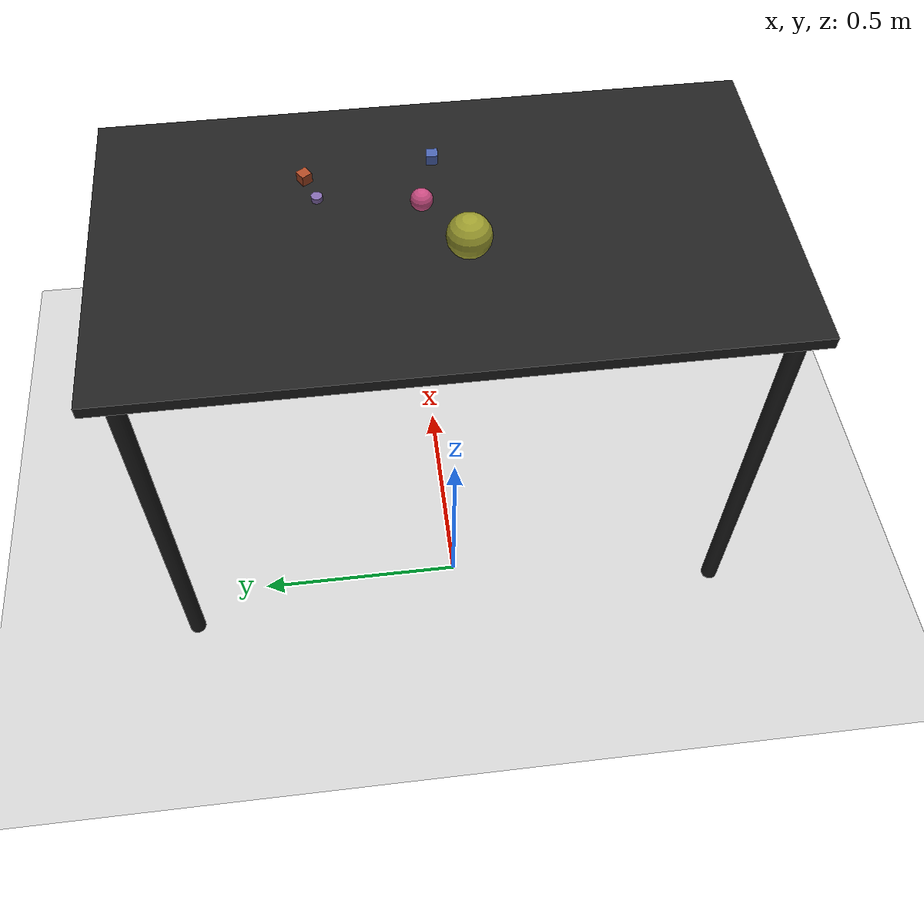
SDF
<?xml version="1.0" ?>
<sdf version="1.6">
  <world name="arm_world">
    <plugin filename="gz-sim-physics-system" name="gz::sim::systems::Physics">
      <engine>
        <filename>libgz-physics-bullet-featherstone-plugin.so</filename>
      </engine>
    </plugin>
    <plugin filename="gz-sim-user-commands-system" name="gz::sim::systems::UserCommands"/>
    <plugin filename="gz-sim-scene-broadcaster-system" name="gz::sim::systems::SceneBroadcaster"/>
    <plugin filename="gz-sim-sensors-system" name="gz::sim::systems::Sensors">
      <render_engine>ogre2</render_engine>
    </plugin>
    <gravity>0.0 0.0 -9.8</gravity>
    <scene>
      <shadows>false</shadows>
    </scene>
    <gui>
      <camera name="user_camera">
        <pose>0.75 -0.75 1.4 0 0.29 2.21</pose>
      </camera>
    </gui>
    <include>
      <uri>https://fuel.gazebosim.org/1.0/OpenRobotics/models/Sun</uri>
    </include>
    <model name="table">
      <static>true</static>
      <include>
        <uri>model://table</uri>
      </include>
      <pose>0.29 0 0 0 0 1.5708</pose>
    </model>
    <model name="ground_plane">
      <static>true</static>
      <link name="link">
        <collision name="collision">
          <geometry>
            <plane>
              <normal>0 0 1</normal>
            </plane>
          </geometry>
          <surface>
            <friction>
              <ode>
                <mu>1.0</mu>
                <mu2>1.0</mu2>
              </ode>
            </friction>
          </surface>
        </collision>
        <visual name="visual">
          <geometry>
            <plane>
              <normal>0 0 1</normal>
              <size>100 100</size>
            </plane>
          </geometry>
          <material>
            <ambient>0.8 0.8 0.8 1</ambient>
            <diffuse>0.8 0.8 0.8 1</diffuse>
            <specular>0.8 0.8 0.8 1</specular>
          </material>
        </visual>
      </link>
    </model>
    <model name="cylinder_s_0">
      <pose>0.368 0.259 1.05 0 0 1.74</pose>
      <link name="cylinder_s_0_link">
        <inertial>
          <mass>0.05</mass>
          <inertia>
            <ixx>2.04e-7</ixx>
            <iyy>2.04e-7</iyy>
            <izz>3.9e-8</izz>
            <ixy>0</ixy>
            <ixz>0</ixz>
            <iyz>0</iyz>
          </inertia>
        </inertial>
        <collision name="cylinder_s_0_collision">
          <geometry>
            <cylinder>
              <radius>0.0125</radius>
              <length>0.0125</length>
            </cylinder>
          </geometry>
          <surface>
            <friction>
              <ode>
                <mu>0.8</mu>
                <mu2>0.8</mu2>
                <fdir1>0 0 1</fdir1>
                <slip1>0.001</slip1>
                <slip2>0.001</slip2>
              </ode>
              <torsional>
                <coefficient>0.1</coefficient>
                <surface_radius>0.015</surface_radius>
                <use_patch_radius>true</use_patch_radius>
              </torsional>
            </friction>
            <contact>
              <ode>
                <kp>1e5</kp>
                <kd>10</kd>
                <max_vel>0.1</max_vel>
                <min_depth>0.001</min_depth>
                <soft_cfm>0.01</soft_cfm>
                <soft_erp>0.2</soft_erp>
              </ode>
            </contact>
            <bounce>
              <restitution_coefficient>0.2</restitution_coefficient>
              <threshold>0.01</threshold>
            </bounce>
          </surface>
        </collision>
        <visual name="cylinder_s_0_visual">
          <geometry>
            <cylinder>
              <radius>0.0125</radius>
              <length>0.0125</length>
            </cylinder>
          </geometry>
          <material>
            <ambient>0.5 0.4 0.66 1</ambient>
            <diffuse>0.5 0.4 0.66 1</diffuse>
          </material>
        </visual>
        <velocity_decay>
          <linear>1</linear>
          <angular>1</angular>
        </velocity_decay>
      </link>
    </model>
    <model name="cube_s_1">
      <pose>0.436 0.283 1.05 0 0 0.56</pose>
      <link name="cube_s_1_link">
        <inertial>
          <mass>0.05</mass>
          <inertia>
            <ixx>2.04e-7</ixx>
            <iyy>2.04e-7</iyy>
            <izz>3.9e-8</izz>
            <ixy>0</ixy>
            <ixz>0</ixz>
            <iyz>0</iyz>
          </inertia>
        </inertial>
        <collision name="cube_s_1_collision">
          <geometry>
            <box>
              <size>0.025 0.025 0.025</size>
            </box>
          </geometry>
          <surface>
            <friction>
              <ode>
                <mu>0.8</mu>
                <mu2>0.8</mu2>
                <fdir1>0 0 1</fdir1>
                <slip1>0.001</slip1>
                <slip2>0.001</slip2>
              </ode>
              <torsional>
                <coefficient>0.1</coefficient>
                <surface_radius>0.015</surface_radius>
                <use_patch_radius>true</use_patch_radius>
              </torsional>
            </friction>
            <contact>
              <ode>
                <kp>1e5</kp>
                <kd>10</kd>
                <max_vel>0.1</max_vel>
                <min_depth>0.001</min_depth>
                <soft_cfm>0.01</soft_cfm>
                <soft_erp>0.2</soft_erp>
              </ode>
            </contact>
            <bounce>
              <restitution_coefficient>0.2</restitution_coefficient>
              <threshold>0.01</threshold>
            </bounce>
          </surface>
        </collision>
        <visual name="cube_s_1_visual">
          <geometry>
            <box>
              <size>0.025 0.025 0.025</size>
            </box>
          </geometry>
          <material>
            <ambient>0.67 0.28 0.14 1</ambient>
            <diffuse>0.67 0.28 0.14 1</diffuse>
          </material>
        </visual>
        <velocity_decay>
          <linear>1</linear>
          <angular>1</angular>
        </velocity_decay>
      </link>
    </model>
    <model name="sphere_m_2">
      <pose>0.337 0.036 1.05 0 0 2.52</pose>
      <link name="sphere_m_2_link">
        <inertial>
          <mass>0.05</mass>
          <inertia>
            <ixx>2.04e-7</ixx>
            <iyy>2.04e-7</iyy>
            <izz>3.9e-8</izz>
            <ixy>0</ixy>
            <ixz>0</ixz>
            <iyz>0</iyz>
          </inertia>
        </inertial>
        <collision name="sphere_m_2_collision">
          <geometry>
            <sphere>
              <radius>0.025</radius>
            </sphere>
          </geometry>
          <surface>
            <friction>
              <ode>
                <mu>0.8</mu>
                <mu2>0.8</mu2>
                <fdir1>0 0 1</fdir1>
                <slip1>0.001</slip1>
                <slip2>0.001</slip2>
              </ode>
              <torsional>
                <coefficient>0.1</coefficient>
                <surface_radius>0.015</surface_radius>
                <use_patch_radius>true</use_patch_radius>
              </torsional>
            </friction>
            <contact>
              <ode>
                <kp>1e5</kp>
                <kd>10</kd>
                <max_vel>0.1</max_vel>
                <min_depth>0.001</min_depth>
                <soft_cfm>0.01</soft_cfm>
                <soft_erp>0.2</soft_erp>
              </ode>
            </contact>
            <bounce>
              <restitution_coefficient>0.2</restitution_coefficient>
              <threshold>0.01</threshold>
            </bounce>
          </surface>
        </collision>
        <visual name="sphere_m_2_visual">
          <geometry>
            <sphere>
              <radius>0.025</radius>
            </sphere>
          </geometry>
          <material>
            <ambient>0.78 0.29 0.5 1</ambient>
            <diffuse>0.78 0.29 0.5 1</diffuse>
          </material>
        </visual>
        <velocity_decay>
          <linear>1</linear>
          <angular>1</angular>
        </velocity_decay>
      </link>
    </model>
    <model name="sphere_l_3">
      <pose>0.22 -0.052 1.05 0 0 3.02</pose>
      <link name="sphere_l_3_link">
        <inertial>
          <mass>0.05</mass>
          <inertia>
            <ixx>2.04e-7</ixx>
            <iyy>2.04e-7</iyy>
            <izz>3.9e-8</izz>
            <ixy>0</ixy>
            <ixz>0</ixz>
            <iyz>0</iyz>
          </inertia>
        </inertial>
        <collision name="sphere_l_3_collision">
          <geometry>
            <sphere>
              <radius>0.05</radius>
            </sphere>
          </geometry>
          <surface>
            <friction>
              <ode>
                <mu>0.8</mu>
                <mu2>0.8</mu2>
                <fdir1>0 0 1</fdir1>
                <slip1>0.001</slip1>
                <slip2>0.001</slip2>
              </ode>
              <torsional>
                <coefficient>0.1</coefficient>
                <surface_radius>0.015</surface_radius>
                <use_patch_radius>true</use_patch_radius>
              </torsional>
            </friction>
            <contact>
              <ode>
                <kp>1e5</kp>
                <kd>10</kd>
                <max_vel>0.1</max_vel>
                <min_depth>0.001</min_depth>
                <soft_cfm>0.01</soft_cfm>
                <soft_erp>0.2</soft_erp>
              </ode>
            </contact>
            <bounce>
              <restitution_coefficient>0.2</restitution_coefficient>
              <threshold>0.01</threshold>
            </bounce>
          </surface>
        </collision>
        <visual name="sphere_l_3_visual">
          <geometry>
            <sphere>
              <radius>0.05</radius>
            </sphere>
          </geometry>
          <material>
            <ambient>0.61 0.61 0.18 1</ambient>
            <diffuse>0.61 0.61 0.18 1</diffuse>
          </material>
        </visual>
        <velocity_decay>
          <linear>1</linear>
          <angular>1</angular>
        </velocity_decay>
      </link>
    </model>
    <model name="cube_s_4">
      <pose>0.468 -0.0 1.05 0 0 6.22</pose>
      <link name="cube_s_4_link">
        <inertial>
          <mass>0.05</mass>
          <inertia>
            <ixx>2.04e-7</ixx>
            <iyy>2.04e-7</iyy>
            <izz>3.9e-8</izz>
            <ixy>0</ixy>
            <ixz>0</ixz>
            <iyz>0</iyz>
          </inertia>
        </inertial>
        <collision name="cube_s_4_collision">
          <geometry>
            <box>
              <size>0.025 0.025 0.025</size>
            </box>
          </geometry>
          <surface>
            <friction>
              <ode>
                <mu>0.8</mu>
                <mu2>0.8</mu2>
                <fdir1>0 0 1</fdir1>
                <slip1>0.001</slip1>
                <slip2>0.001</slip2>
              </ode>
              <torsional>
                <coefficient>0.1</coefficient>
                <surface_radius>0.015</surface_radius>
                <use_patch_radius>true</use_patch_radius>
              </torsional>
            </friction>
            <contact>
              <ode>
                <kp>1e5</kp>
                <kd>10</kd>
                <max_vel>0.1</max_vel>
                <min_depth>0.001</min_depth>
                <soft_cfm>0.01</soft_cfm>
                <soft_erp>0.2</soft_erp>
              </ode>
            </contact>
            <bounce>
              <restitution_coefficient>0.2</restitution_coefficient>
              <threshold>0.01</threshold>
            </bounce>
          </surface>
        </collision>
        <visual name="cube_s_4_visual">
          <geometry>
            <box>
              <size>0.025 0.025 0.025</size>
            </box>
          </geometry>
          <material>
            <ambient>0.28 0.38 0.67 1</ambient>
            <diffuse>0.28 0.38 0.67 1</diffuse>
          </material>
        </visual>
        <velocity_decay>
          <linear>1</linear>
          <angular>1</angular>
        </velocity_decay>
      </link>
    </model>
  </world>
</sdf>

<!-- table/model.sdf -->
<sdf version="1.5">
  <model name="table">
    <static>true</static>
    <link name="link">
      <collision name="surface">
        <pose>0 0 1.0 0 0 0</pose>
        <geometry>
          <box>
            <size>1.5 0.8 0.03</size>
          </box>
        </geometry>
        <surface>
          <friction>
            <ode>
              <mu>0.6</mu>
              <mu2>0.6</mu2>
            </ode>
          </friction>
        </surface>
      </collision>
      <visual name="surface">
        <pose>0 0 1.0 0 0 0</pose>
        <geometry>
          <box>
            <size>1.5 0.8 0.03</size>
          </box>
        </geometry>
        <material>
          <script>
            <uri>file://media/materials/scripts/gazebo.material</uri>
            <name>Gazebo/Black</name>
          </script>
        </material>
      </visual>
      <collision name="front_left_leg">
        <pose>0.68 0.38 0.5 0 0 0</pose>
        <geometry>
          <cylinder>
            <radius>0.02</radius>
            <length>1.0</length>
          </cylinder>
        </geometry>
      </collision>
      <visual name="front_left_leg">
        <pose>0.68 0.38 0.5 0 0 0</pose>
        <geometry>
          <cylinder>
            <radius>0.02</radius>
            <length>1.0</length>
          </cylinder>
        </geometry>
        <material>
          <script>
            <uri>file://media/materials/scripts/gazebo.material</uri>
            <name>Gazebo/Black</name>
          </script>
        </material>
      </visual>
      <collision name="front_right_leg">
        <pose>0.68 -0.38 0.5 0 0 0</pose>
        <geometry>
          <cylinder>
            <radius>0.02</radius>
            <length>1.0</length>
          </cylinder>
        </geometry>
      </collision>
      <visual name="front_right_leg">
        <pose>0.68 -0.38 0.5 0 0 0</pose>
        <geometry>
          <cylinder>
            <radius>0.02</radius>
            <length>1.0</length>
          </cylinder>
        </geometry>
        <material>
          <script>
            <uri>file://media/materials/scripts/gazebo.material</uri>
            <name>Gazebo/Black</name>
          </script>
        </material>
      </visual>
      <collision name="back_right_leg">
        <pose>-0.68 -0.38 0.5 0 0 0</pose>
        <geometry>
          <cylinder>
            <radius>0.02</radius>
            <length>1.0</length>
          </cylinder>
        </geometry>
      </collision>
      <visual name="back_right_leg">
        <pose>-0.68 -0.38 0.5 0 0 0</pose>
        <geometry>
          <cylinder>
            <radius>0.02</radius>
            <length>1.0</length>
          </cylinder>
        </geometry>
        <material>
          <script>
            <uri>file://media/materials/scripts/gazebo.material</uri>
            <name>Gazebo/Black</name>
          </script>
        </material>
      </visual>
      <collision name="back_left_leg">
        <pose>-0.68 0.38 0.5 0 0 0</pose>
        <geometry>
          <cylinder>
            <radius>0.02</radius>
            <length>1.0</length>
          </cylinder>
        </geometry>
      </collision>
      <visual name="back_left_leg">
        <pose>-0.68 0.38 0.5 0 0 0</pose>
        <geometry>
          <cylinder>
            <radius>0.02</radius>
            <length>1.0</length>
          </cylinder>
        </geometry>
        <material>
          <script>
            <uri>file://media/materials/scripts/gazebo.material</uri>
            <name>Gazebo/Black</name>
          </script>
        </material>
      </visual>
    </link>
  </model>
</sdf>
